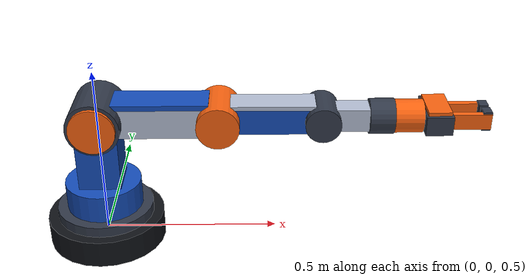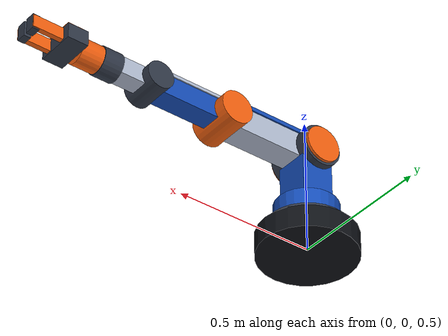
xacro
<?xml version="1.0"?>

<robot
  name="sentinel_arm"
  xmlns:xacro="http://www.ros.org/wiki/xacro">

  <xacro:include filename="sentinel_arm_physics.xacro"/>

  <xacro:include filename="sentinel_arm_ros2_control.xacro"/>

  <!-- Robot dimensions          -->

  <xacro:property name="base_radius" value="0.17"/>
  <xacro:property name="base_height" value="0.08"/>

  <xacro:property name="turntable_radius" value="0.11"/>
  <xacro:property name="turntable_height" value="0.08"/>

  <xacro:property name="shoulder_height" value="0.28"/>
  <xacro:property name="shoulder_width" value="0.12"/>

  <xacro:property name="upper_arm_length" value="0.34"/>
  <xacro:property name="upper_arm_width" value="0.09"/>

  <xacro:property name="forearm_length" value="0.29"/>
  <xacro:property name="forearm_width" value="0.075"/>

  <xacro:property name="wrist_length" value="0.13"/>
  <xacro:property name="wrist_yaw_length" value="0.07"/>
  <xacro:property name="wrist_width" value="0.065"/>

  <xacro:property name="palm_length" value="0.075"/>
  <xacro:property name="palm_width" value="0.14"/>
  <xacro:property name="palm_height" value="0.055"/>

  <xacro:property name="finger_length" value="0.11"/>
  <xacro:property name="finger_width" value="0.018"/>
  <xacro:property name="finger_height" value="0.045"/>

  <!-- Materials                 -->

  <material name="sentinel_black">
    <color rgba="0.06 0.07 0.09 1.0"/>
  </material>

  <material name="sentinel_blue">
    <color rgba="0.08 0.30 0.72 1.0"/>
  </material>

  <material name="sentinel_light">
    <color rgba="0.70 0.74 0.82 1.0"/>
  </material>

  <material name="sentinel_dark">
    <color rgba="0.19 0.22 0.28 1.0"/>
  </material>

  <material name="sentinel_orange">
    <color rgba="0.96 0.38 0.06 1.0"/>
  </material>

  <!-- Base                      -->

  <!-- Gazebo world reference -->
  <link name="world"/>

  <!-- Bolt the Sentinel Arm to the simulation floor -->
  <joint name="world_fixed_joint" type="fixed">
    <parent link="world"/>
    <child link="base_footprint"/>
    <origin xyz="0 0 0.475" rpy="0 0 0"/>
  </joint>

  <!-- Massless root frame for kinematics -->

  <link name="base_footprint"/>

  <joint name="base_footprint_joint" type="fixed">
    <parent link="base_footprint"/>
    <child link="base_link"/>
    <origin xyz="0 0 0" rpy="0 0 0"/>
  </joint>

  <link name="base_link">
    <visual>
      <origin xyz="0 0 ${base_height / 2.0}" rpy="0 0 0"/>

      <geometry>
        <cylinder
          radius="${base_radius}"
          length="${base_height}"/>
      </geometry>

      <material name="sentinel_black"/>
    </visual>

    <!-- Decorative upper base ring -->
    <visual>
      <origin xyz="0 0 ${base_height + 0.015}" rpy="0 0 0"/>

      <geometry>
        <cylinder radius="0.14" length="0.03"/>
      </geometry>

      <material name="sentinel_dark"/>

    </visual>
        <xacro:cylinder_physics
      mass="4.0"
      radius="${base_radius}"
      length="${base_height}"
      ox="0"
      oy="0"
      oz="${base_height / 2.0}"/>
  </link>

  <!-- Rotating shoulder base    -->

  <link name="turntable_link">

    <visual>
      <origin xyz="0 0 ${turntable_height / 2.0}" rpy="0 0 0"/>

      <geometry>
        <cylinder
          radius="${turntable_radius}"
          length="${turntable_height}"/>
      </geometry>

      <material name="sentinel_blue"/>
    </visual>

    <!-- Main shoulder column -->
    <visual>
      <origin
        xyz="0 0 ${shoulder_height / 2.0}"
        rpy="0 0 0"/>

      <geometry>
        <box
          size="${shoulder_width}
                ${shoulder_width}
                ${shoulder_height}"/>
      </geometry>

      <material name="sentinel_blue"/>
    </visual>

    <!-- Shoulder joint housing -->
    <visual>
      <origin
        xyz="0 0 ${shoulder_height}"
        rpy="1.5708 0 0"/>

      <geometry>
        <cylinder radius="0.075" length="0.17"/>
      </geometry>

      <material name="sentinel_dark"/>

    </visual>

        <xacro:box_physics
      mass="3.0"
      x_size="${shoulder_width}"
      y_size="${shoulder_width}"
      z_size="${shoulder_height}"
      ox="0"
      oy="0"
      oz="${shoulder_height / 2.0}"/>

  </link>

  <joint name="shoulder_pan_joint" type="continuous">
    <parent link="base_link"/>
    <child link="turntable_link"/>

    <origin
      xyz="0 0 ${base_height + 0.03}"
      rpy="0 0 0"/>

    <axis xyz="0 0 1"/>

      <limit
    effort="35.0"
    velocity="1.5"/>
  </joint>

  <!-- Upper arm                 -->

  <link name="upper_arm_link">

    <!-- Shoulder joint cap -->
    <visual>
      <origin xyz="0 0 0" rpy="1.5708 0 0"/>

      <geometry>
        <cylinder radius="0.065" length="0.19"/>
      </geometry>

      <material name="sentinel_orange"/>
    </visual>

    <!-- Upper arm body -->
    <visual>
      <origin
        xyz="${upper_arm_length / 2.0} 0 0"
        rpy="0 0 0"/>

      <geometry>
        <box
          size="${upper_arm_length}
                ${upper_arm_width}
                ${upper_arm_width}"/>
      </geometry>

      <material name="sentinel_light"/>
    </visual>

    <!-- Decorative top panel -->
    <visual>
      <origin
        xyz="${upper_arm_length / 2.0} 0 0.05"
        rpy="0 0 0"/>

      <geometry>
        <box
          size="${upper_arm_length - 0.05}
                ${upper_arm_width + 0.01}
                0.015"/>
      </geometry>

      <material name="sentinel_blue"/>
    </visual>

        <xacro:box_physics
      mass="2.2"
      x_size="${upper_arm_length}"
      y_size="${upper_arm_width}"
      z_size="${upper_arm_width}"
      ox="${upper_arm_length / 2.0}"
      oy="0"
      oz="0"/>

  </link>

  <joint name="shoulder_lift_joint" type="revolute">
    <parent link="turntable_link"/>
    <child link="upper_arm_link"/>

    <origin
      xyz="0 0 ${shoulder_height}"
      rpy="0 0 0"/>

    <axis xyz="0 1 0"/>

    <limit
      lower="-1.75"
      upper="1.75"
      effort="30.0"
      velocity="1.2"/>
  </joint>

  <!-- Forearm                   -->

  <link name="forearm_link">

    <!-- Elbow joint housing -->
    <visual>
      <origin xyz="0 0 0" rpy="1.5708 0 0"/>

      <geometry>
        <cylinder radius="0.06" length="0.16"/>
      </geometry>

      <material name="sentinel_orange"/>
    </visual>

    <!-- Forearm body -->
    <visual>
      <origin
        xyz="${forearm_length / 2.0} 0 0"
        rpy="0 0 0"/>

      <geometry>
        <box
          size="${forearm_length}
                ${forearm_width}
                ${forearm_width}"/>
      </geometry>

      <material name="sentinel_blue"/>
    </visual>

    <!-- Forearm panel -->
    <visual>
      <origin
        xyz="${forearm_length / 2.0} 0 0.043"
        rpy="0 0 0"/>

      <geometry>
        <box
          size="${forearm_length - 0.04}
                ${forearm_width + 0.008}
                0.012"/>
      </geometry>

      <material name="sentinel_light"/>
    </visual>

        <xacro:box_physics
      mass="1.6"
      x_size="${forearm_length}"
      y_size="${forearm_width}"
      z_size="${forearm_width}"
      ox="${forearm_length / 2.0}"
      oy="0"
      oz="0"/>

  </link>

  <joint name="elbow_joint" type="revolute">
    <parent link="upper_arm_link"/>
    <child link="forearm_link"/>

    <origin
      xyz="${upper_arm_length} 0 0"
      rpy="0 0 0"/>

    <axis xyz="0 1 0"/>

    <limit
      lower="-2.35"
      upper="2.35"
      effort="22.0"
      velocity="1.4"/>
  </joint>

  <!-- Wrist pitch               -->

  <link name="wrist_pitch_link">

    <visual>
      <origin xyz="0 0 0" rpy="1.5708 0 0"/>

      <geometry>
        <cylinder radius="0.05" length="0.13"/>
      </geometry>

      <material name="sentinel_dark"/>
    </visual>

    <visual>
      <origin
        xyz="${wrist_length / 2.0} 0 0"
        rpy="0 0 0"/>

      <geometry>
        <box
          size="${wrist_length}
                ${wrist_width}
                ${wrist_width}"/>
      </geometry>

      <material name="sentinel_light"/>
    </visual>

        <xacro:box_physics
      mass="0.8"
      x_size="${wrist_length}"
      y_size="${wrist_width}"
      z_size="${wrist_width}"
      ox="${wrist_length / 2.0}"
      oy="0"
      oz="0"/>

  </link>

  <joint name="wrist_pitch_joint" type="revolute">
    <parent link="forearm_link"/>
    <child link="wrist_pitch_link"/>

    <origin
      xyz="${forearm_length} 0 0"
      rpy="0 0 0"/>

    <axis xyz="0 1 0"/>

    <limit
      lower="-1.75"
      upper="1.75"
      effort="12.0"
      velocity="1.8"/>
  </joint>

  <!-- Wrist yaw                 -->

  <link name="wrist_yaw_link">

    <visual>
      <origin
        xyz="${wrist_yaw_length / 2.0} 0 0"
        rpy="0 1.5708 0"/>

      <geometry>
        <cylinder
          radius="0.05"
          length="${wrist_yaw_length}"/>
      </geometry>

      <material name="sentinel_dark"/>
    </visual>

        <xacro:box_physics
      mass="0.5"
      x_size="${wrist_yaw_length}"
      y_size="0.10"
      z_size="0.10"
      ox="${wrist_yaw_length / 2.0}"
      oy="0"
      oz="0"/>

  </link>

  <joint name="wrist_yaw_joint" type="revolute">
    <parent link="wrist_pitch_link"/>
    <child link="wrist_yaw_link"/>

    <origin
      xyz="${wrist_length} 0 0"
      rpy="0 0 0"/>

    <axis xyz="0 0 1"/>

    <limit
      lower="-1.75"
      upper="1.75"
      effort="10.0"
      velocity="1.8"/>
  </joint>

  <!-- Wrist roll                -->

  <link name="wrist_roll_link">

    <visual>
      <origin
        xyz="0.04 0 0"
        rpy="0 1.5708 0"/>

      <geometry>
        <cylinder
          radius="0.047"
          length="0.08"/>
      </geometry>

      <material name="sentinel_orange"/>
    </visual>

        <xacro:box_physics
      mass="0.4"
      x_size="0.08"
      y_size="0.094"
      z_size="0.094"
      ox="0.04"
      oy="0"
      oz="0"/>

  </link>

  <joint name="wrist_roll_joint" type="continuous">
  <parent link="wrist_yaw_link"/>
  <child link="wrist_roll_link"/>

  <origin
    xyz="${wrist_yaw_length} 0 0"
    rpy="0 0 0"/>

  <axis xyz="1 0 0"/>

  <limit
    effort="10.0"
    velocity="2.0"/>
  </joint>

  <!-- Gripper palm              -->

  <link name="palm_link">

    <visual>
      <origin
        xyz="${palm_length / 2.0} 0 0"
        rpy="0 0 0"/>

      <geometry>
        <box
          size="${palm_length}
                ${palm_width}
                ${palm_height}"/>
      </geometry>

      <material name="sentinel_dark"/>
    </visual>

    <visual>
      <origin
        xyz="${palm_length / 2.0} 0 0.032"
        rpy="0 0 0"/>

      <geometry>
        <box
          size="${palm_length - 0.01}
                ${palm_width - 0.02}
                0.012"/>
      </geometry>

      <material name="sentinel_orange"/>
    </visual>

        <xacro:box_physics
      mass="0.6"
      x_size="${palm_length}"
      y_size="${palm_width}"
      z_size="${palm_height}"
      ox="${palm_length / 2.0}"
      oy="0"
      oz="0"/>

  </link>

  <joint name="palm_fixed_joint" type="fixed">
    <parent link="wrist_roll_link"/>
    <child link="palm_link"/>

    <origin xyz="0.08 0 0" rpy="0 0 0"/>
  </joint>

  <!-- Left gripper finger       -->

  <link name="left_finger_link">

    <visual>
      <origin
        xyz="${finger_length / 2.0} 0 0"
        rpy="0 0 0"/>

      <geometry>
        <box
          size="${finger_length}
                ${finger_width}
                ${finger_height}"/>
      </geometry>

      <material name="sentinel_orange"/>
    </visual>

    <!-- Fingertip -->
    <visual>
      <origin
        xyz="${finger_length - 0.012} -0.012 0"
        rpy="0 0 0"/>

      <geometry>
        <box size="0.025 0.035 0.055"/>
      </geometry>

      <material name="sentinel_dark"/>
    </visual>

        <xacro:box_physics
      mass="0.15"
      x_size="${finger_length}"
      y_size="${finger_width}"
      z_size="${finger_height}"
      ox="${finger_length / 2.0}"
      oy="0"
      oz="0"/>

  </link>

  <joint name="left_finger_joint" type="prismatic">
    <parent link="palm_link"/>
    <child link="left_finger_link"/>

    <origin
      xyz="${palm_length} 0.035 0"
      rpy="0 0 0"/>

    <axis xyz="0 1 0"/>

    <limit
      lower="-0.005"
      upper="0.035"
      effort="8.0"
      velocity="0.15"/>
  </joint>

  <!-- Right gripper finger      -->

  <link name="right_finger_link">

    <visual>
      <origin
        xyz="${finger_length / 2.0} 0 0"
        rpy="0 0 0"/>

      <geometry>
        <box
          size="${finger_length}
                ${finger_width}
                ${finger_height}"/>
      </geometry>

      <material name="sentinel_orange"/>
    </visual>

    <!-- Fingertip -->
    <visual>
      <origin
        xyz="${finger_length - 0.012} 0.012 0"
        rpy="0 0 0"/>

      <geometry>
        <box size="0.025 0.035 0.055"/>
      </geometry>

      <material name="sentinel_dark"/>
    </visual>

        <xacro:box_physics
      mass="0.15"
      x_size="${finger_length}"
      y_size="${finger_width}"
      z_size="${finger_height}"
      ox="${finger_length / 2.0}"
      oy="0"
      oz="0"/>

  </link>

  <joint name="right_finger_joint" type="prismatic">

    <mimic joint="left_finger_joint" multiplier="1.0" offset="0.0"/>

    <parent link="palm_link"/>
    <child link="right_finger_link"/>

    <origin
      xyz="${palm_length} -0.035 0"
      rpy="0 0 0"/>

    <axis xyz="0 -1 0"/>

    <limit
      lower="-0.005"
      upper="0.035"
      effort="8.0"
      velocity="0.15"/>
  </joint>

  <!-- End-effector reference frame -->
  <link name="tool0"/>

  <joint name="tool0_fixed_joint" type="fixed">
    <parent link="palm_link"/>
    <child link="tool0"/>

    <origin
      xyz="${palm_length + finger_length} 0 0"
      rpy="0 0 0"/>
  </joint>

  <xacro:sentinel_arm_ros2_control/>

</robot>

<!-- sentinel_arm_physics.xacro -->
<robot xmlns:xacro="http://www.ros.org/wiki/xacro">

  <!--
    Creates collision and inertial properties for a box.

    x_size, y_size and z_size are measured in metres.
    mass is measured in kilograms.
    ox, oy and oz specify the centre of the box.
  -->
  <xacro:macro
    name="box_physics"
    params="mass x_size y_size z_size ox oy oz">

    <collision>
      <origin xyz="${ox} ${oy} ${oz}" rpy="0 0 0"/>

      <geometry>
        <box size="${x_size} ${y_size} ${z_size}"/>
      </geometry>
    </collision>

    <inertial>
      <origin xyz="${ox} ${oy} ${oz}" rpy="0 0 0"/>

      <mass value="${mass}"/>

      <inertia
        ixx="${mass * (y_size * y_size + z_size * z_size) / 12.0}"
        ixy="0.0"
        ixz="0.0"
        iyy="${mass * (x_size * x_size + z_size * z_size) / 12.0}"
        iyz="0.0"
        izz="${mass * (x_size * x_size + y_size * y_size) / 12.0}"/>
    </inertial>

  </xacro:macro>

  <!--
    Creates collision and inertial properties for a cylinder
    whose main axis points along the Z axis.
  -->
  <xacro:macro
    name="cylinder_physics"
    params="mass radius length ox oy oz">

    <collision>
      <origin xyz="${ox} ${oy} ${oz}" rpy="0 0 0"/>

      <geometry>
        <cylinder radius="${radius}" length="${length}"/>
      </geometry>
    </collision>

    <inertial>
      <origin xyz="${ox} ${oy} ${oz}" rpy="0 0 0"/>

      <mass value="${mass}"/>

      <inertia
        ixx="${mass * (3.0 * radius * radius + length * length) / 12.0}"
        ixy="0.0"
        ixz="0.0"
        iyy="${mass * (3.0 * radius * radius + length * length) / 12.0}"
        iyz="0.0"
        izz="${mass * radius * radius / 2.0}"/>
    </inertial>

  </xacro:macro>

</robot>
